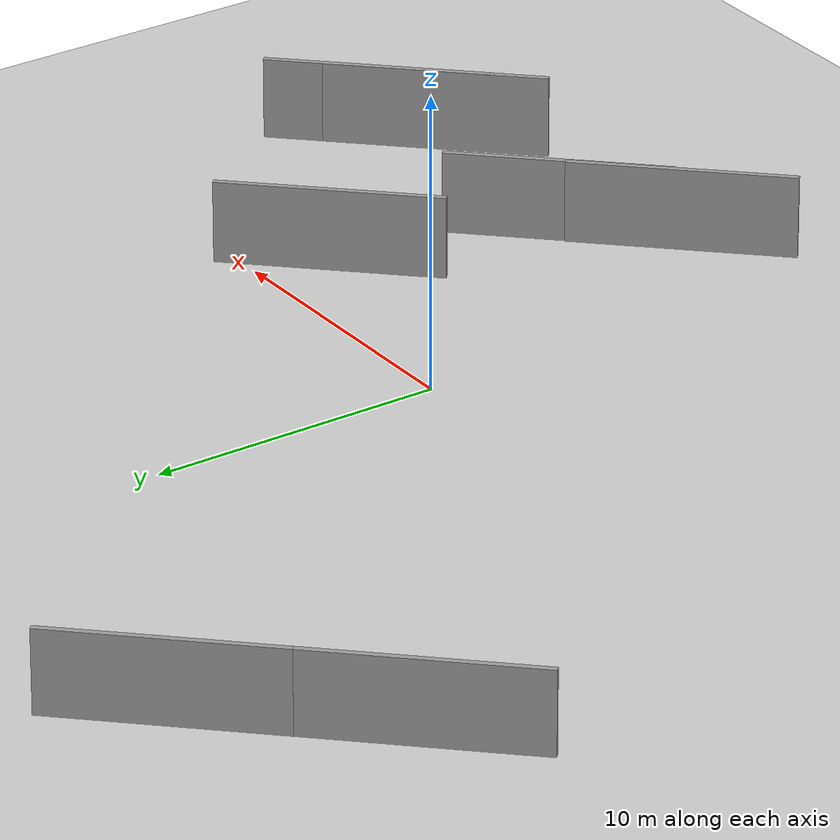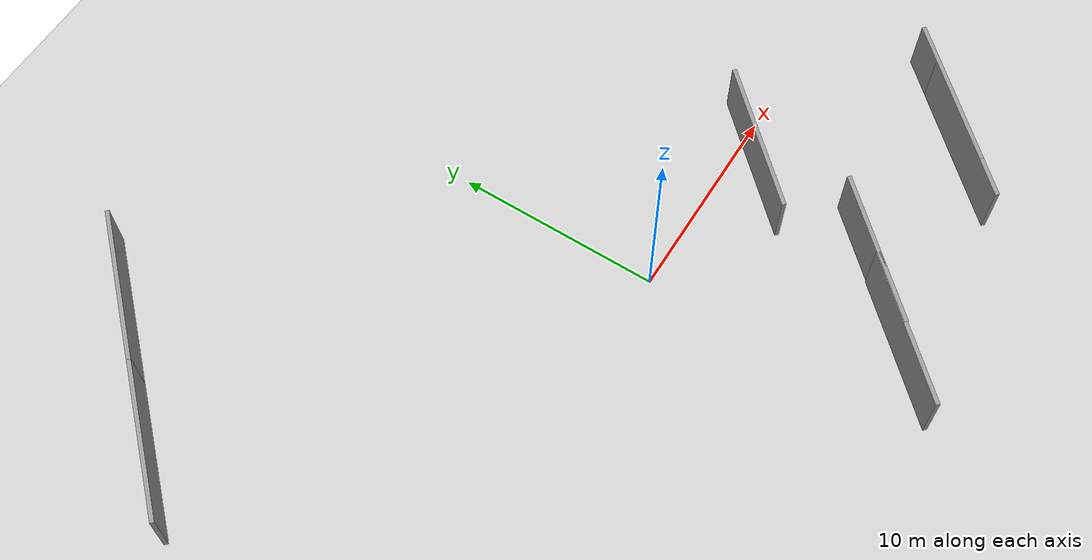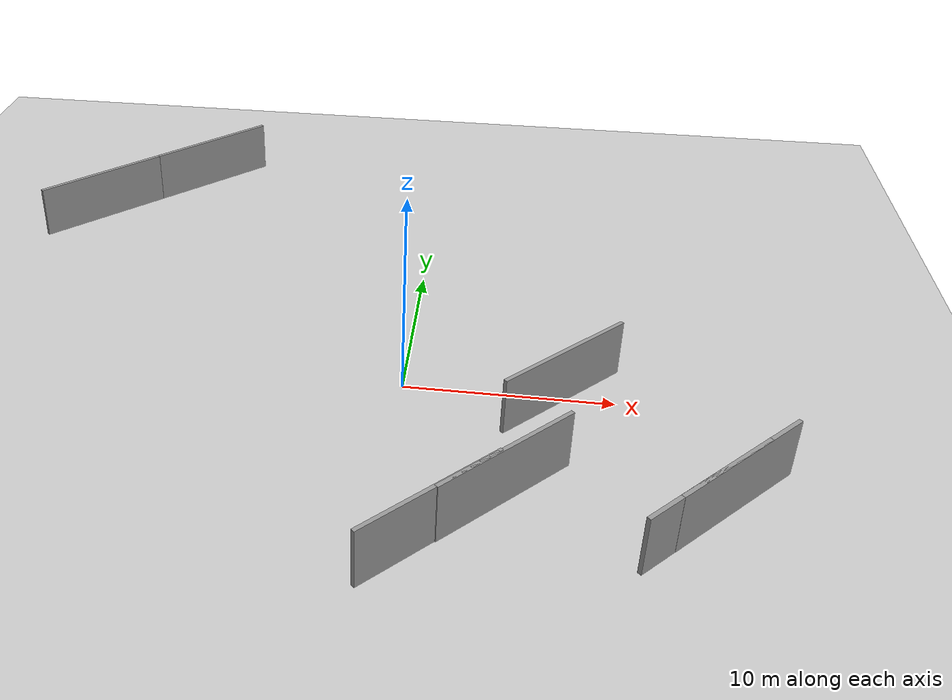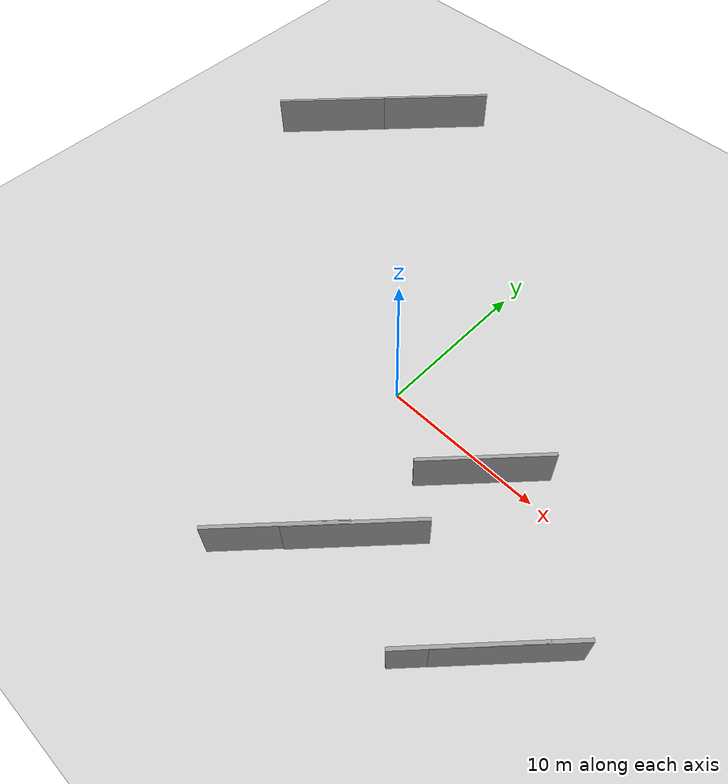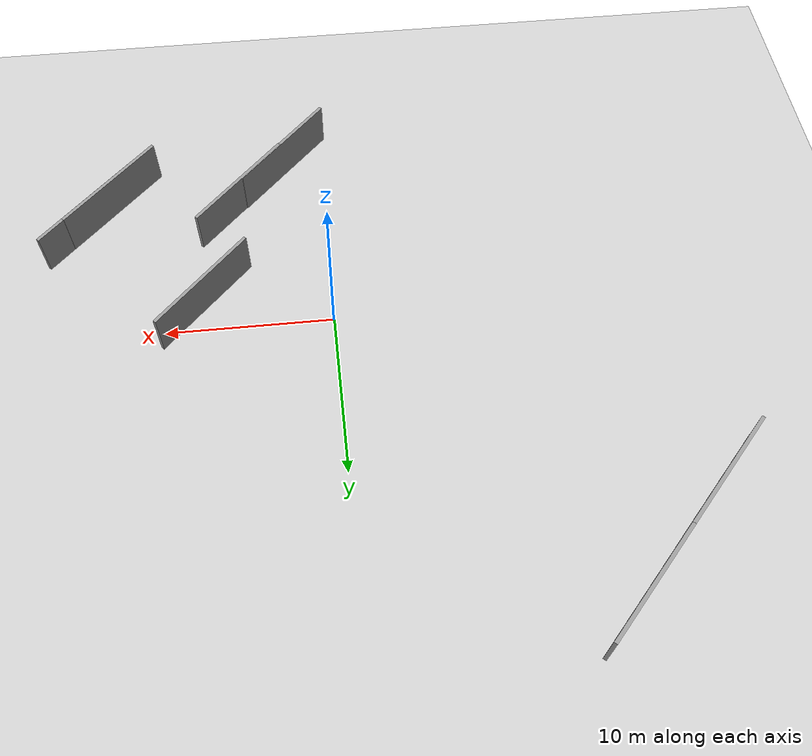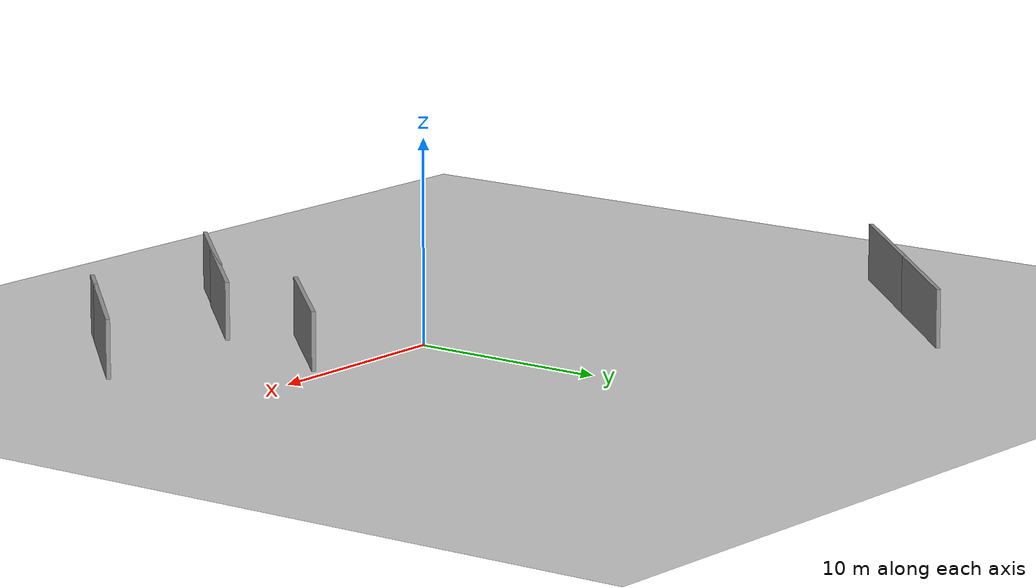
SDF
<sdf version="1.7">
 <world name="default">
  <light name="sun" type="directional">
   <pose>0 0 10 0 -0 0</pose>
   <diffuse>0.8 0.8 0.8 1</diffuse>
   <specular>0.2 0.2 0.2 1</specular>
   <attenuation>
    <range>1000</range>
    <constant>0.9</constant>
    <linear>0.01</linear>
    <quadratic>0.001</quadratic>
   </attenuation>
   <direction>-0.5 0.1 -0.9</direction>
   <spot><inner_angle>0</inner_angle><outer_angle>0</outer_angle><falloff>0</falloff></spot>
  </light>
  <gravity>0 0 -9.8</gravity>
  <magnetic_field>6e-06 2.3e-05 -4.2e-05</magnetic_field>
  <atmosphere type="adiabatic"/>
  <physics type="ode">
   <max_step_size>0.00025</max_step_size>
   <real_time_factor>1</real_time_factor>
   <real_time_update_rate>4000</real_time_update_rate>
  </physics>
  <scene><ambient>1 1 1 1</ambient><background>0.7 0.7 0.7 1</background><shadows>1</shadows></scene>
  <spherical_coordinates>
   <surface_model>EARTH_WGS84</surface_model>
   <latitude_deg>0</latitude_deg>
   <longitude_deg>0</longitude_deg>
   <elevation>0</elevation>
   <heading_deg>0</heading_deg>
  </spherical_coordinates>
  <model name="ground_plane">
   <static>1</static>
   <link name="link">
    <collision name="collision">
     <geometry><plane><normal>0 0 1</normal><size>100 100</size></plane></geometry>
     <surface>
      <contact><collide_bitmask>65535</collide_bitmask></contact>
      <friction><ode><mu>100</mu><mu2>50</mu2></ode></friction>
     </surface>
     <max_contacts>20</max_contacts>
    </collision>
    <visual name="visual">
     <cast_shadows>0</cast_shadows>
     <geometry><plane><normal>0 0 1</normal><size>100 100</size></plane></geometry>
     <material>
      <script><uri>file://media/materials/scripts/gazebo.material</uri><name>Gazebo/Grey</name></script>
     </material>
    </visual>
   </link>
   <pose>-5.10672 4.65884 0 0 -0 0</pose>
  </model>
  <model name="grey_wall">
   <static>1</static>
   <link name="link">
    <pose>0 0 1.4 0 -0 0</pose>
    <collision name="collision"><geometry><box><size>7.5 0.2 2.8</size></box></geometry></collision>
    <visual name="visual">
     <cast_shadows>0</cast_shadows>
     <geometry><box><size>7.5 0.2 2.8</size></box></geometry>
     <material>
      <script>
       <uri>model://grey_wall/materials/scripts</uri>
       <uri>model://grey_wall/materials/textures</uri>
       <name>vrc/grey_wall</name>
      </script>
     </material>
    </visual>
   </link>
   <pose>-14.0717 18.7948 0.84121 0 -0 0.808046</pose>
  </model>
  <model name="grey_wall_clone">
   <static>1</static>
   <link name="link">
    <pose>0 0 1.4 0 -0 0</pose>
    <collision name="collision"><geometry><box><size>7.5 0.2 2.8</size></box></geometry></collision>
    <visual name="visual">
     <cast_shadows>0</cast_shadows>
     <geometry><box><size>7.5 0.2 2.8</size></box></geometry>
     <material>
      <script>
       <uri>model://grey_wall/materials/scripts</uri>
       <uri>model://grey_wall/materials/textures</uri>
       <name>vrc/grey_wall</name>
      </script>
     </material>
    </visual>
   </link>
   <pose>-19.2303 13.392 0.84121 0 -0 0.808046</pose>
  </model>
  <audio><device>default</device></audio>
  <model name="grey_wall_clone_clone">
   <static>1</static>
   <link name="link">
    <pose>0 0 1.4 0 -0 0</pose>
    <collision name="collision"><geometry><box><size>7.5 0.2 2.8</size></box></geometry></collision>
    <visual name="visual">
     <cast_shadows>0</cast_shadows>
     <geometry><box><size>7.5 0.2 2.8</size></box></geometry>
     <material>
      <script>
       <uri>model://grey_wall/materials/scripts</uri>
       <uri>model://grey_wall/materials/textures</uri>
       <name>vrc/grey_wall</name>
      </script>
     </material>
    </visual>
   </link>
   <pose>7.3962 -1.18418 0.84121 0 -0 0.808046</pose>
  </model>
  <model name="grey_wall_clone_clone_clone">
   <static>1</static>
   <link name="link">
    <pose>0 0 1.4 0 -0 0</pose>
    <collision name="collision"><geometry><box><size>7.5 0.2 2.8</size></box></geometry></collision>
    <visual name="visual">
     <cast_shadows>0</cast_shadows>
     <geometry><box><size>7.5 0.2 2.8</size></box></geometry>
     <material>
      <script>
       <uri>model://grey_wall/materials/scripts</uri>
       <uri>model://grey_wall/materials/textures</uri>
       <name>vrc/grey_wall</name>
      </script>
     </material>
    </visual>
   </link>
   <pose>2.29101 -11.2322 0.84121 0 -0 0.808046</pose>
  </model>
  <model name="grey_wall_clone_clone_clone_0">
   <static>1</static>
   <link name="link">
    <pose>0 0 1.4 0 -0 0</pose>
    <collision name="collision"><geometry><box><size>7.5 0.2 2.8</size></box></geometry></collision>
    <visual name="visual">
     <cast_shadows>0</cast_shadows>
     <geometry><box><size>7.5 0.2 2.8</size></box></geometry>
     <material>
      <script>
       <uri>model://grey_wall/materials/scripts</uri>
       <uri>model://grey_wall/materials/textures</uri>
       <name>vrc/grey_wall</name>
      </script>
     </material>
    </visual>
   </link>
   <pose>5.0709 -8.38571 0.84121 0 -0 0.808046</pose>
  </model>
  <model name="grey_wall_clone_clone_clone_1">
   <static>1</static>
   <link name="link">
    <pose>0 0 1.4 0 -0 0</pose>
    <collision name="collision"><geometry><box><size>7.5 0.2 2.8</size></box></geometry></collision>
    <visual name="visual">
     <cast_shadows>0</cast_shadows>
     <geometry><box><size>7.5 0.2 2.8</size></box></geometry>
     <material>
      <script>
       <uri>model://grey_wall/materials/scripts</uri>
       <uri>model://grey_wall/materials/textures</uri>
       <name>vrc/grey_wall</name>
      </script>
     </material>
    </visual>
   </link>
   <pose>14.282 -7.61359 0.84121 0 -0 0.808046</pose>
  </model>
  <model name="grey_wall_clone_clone_clone_2">
   <static>1</static>
   <link name="link">
    <pose>0 0 1.4 0 -0 0</pose>
    <collision name="collision"><geometry><box><size>7.5 0.2 2.8</size></box></geometry></collision>
    <visual name="visual">
     <cast_shadows>0</cast_shadows>
     <geometry><box><size>7.5 0.2 2.8</size></box></geometry>
     <material>
      <script>
       <uri>model://grey_wall/materials/scripts</uri>
       <uri>model://grey_wall/materials/textures</uri>
       <name>vrc/grey_wall</name>
      </script>
     </material>
    </visual>
   </link>
   <pose>12.921 -9.02844 0.84121 0 -0 0.808046</pose>
  </model>
 </world>
</sdf>
